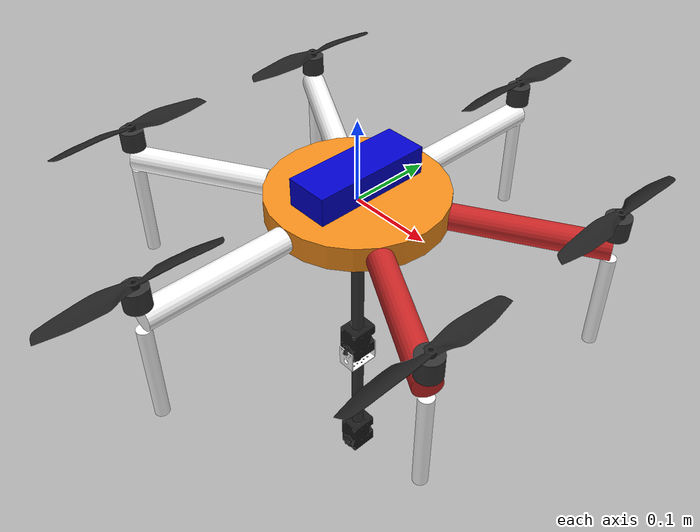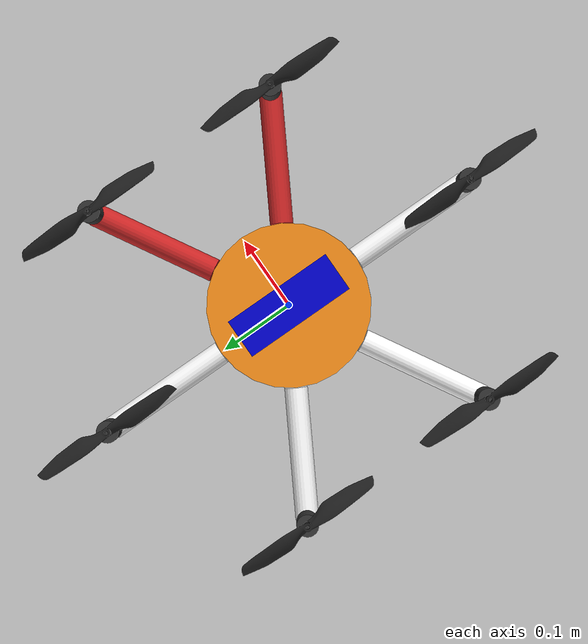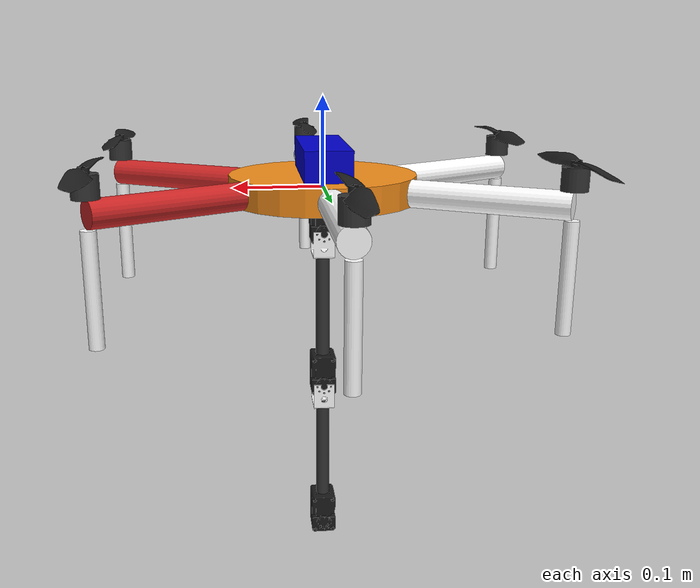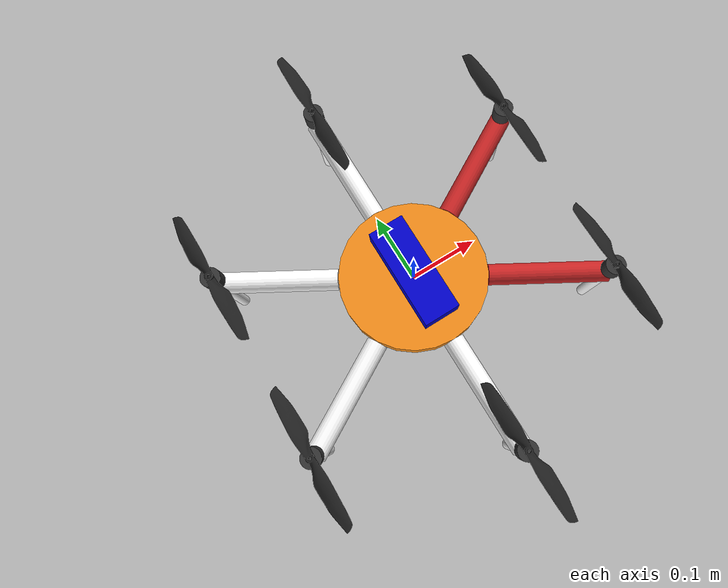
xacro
<?xml version="1.0"?>
<robot name="mantis_uav" xmlns:xacro="http://ros.org/wiki/xacro">
	<!-- Constants -->
	<xacro:property name="pi" value="3.1415926535897931"/>

	<!-- Import macros -->
	<xacro:include filename="$(find mantis_description)/urdf/visual_servo.xacro" />

	<xacro:include filename="$(find mantis_description)/urdf/frame_battery.xacro" />
	<xacro:include filename="$(find mantis_description)/urdf/frame_servo.xacro" />
	<xacro:include filename="$(find mantis_description)/urdf/frame_arm.xacro" />
	<xacro:include filename="$(find mantis_description)/urdf/frame_motor.xacro" />
	<xacro:include filename="$(find mantis_description)/urdf/frame_skid.xacro" />

	<xacro:include filename="$(find mantis_description)/urdf/arm_joint.xacro" />
	<xacro:include filename="$(find mantis_description)/urdf/arm_link.xacro" />

	<xacro:include filename="$(find mantis_description)/urdf/motor_joint.xacro" />

	<!-- Import all Gazebo-customization elements, including Gazebo colors -->
	<xacro:include filename="$(find mantis_description)/urdf/mantis.gazebo" />
	<!-- Import Rviz colors -->
	<xacro:include filename="$(find mantis_description)/urdf/materials.xacro" />

	<!-- Used for fixing robot to Gazebo 'base_link' -->
	<link name="world"/>

	<joint name="fixed" type="floating">
		<parent link="world"/>
		<child link="base_link"/>
	</joint>

	<!-- Base Link -->
	<link name="base_link">
		<inertial>
			<mass value="1.80497" />
			<inertia ixx="0.02961" iyy="0.02933" izz="0.05342" ixy="0.0" ixz="0.00004" iyz="0.0" />

		</inertial>

		<collision name='collision_base_link'>
			<geometry>
				<cylinder radius="0.105" length="0.03"/>
			</geometry>
		</collision>

		<visual name='visual_base_link'>
			<geometry>
				<cylinder radius="0.105" length="0.03"/>
			</geometry>
			<material name="orange"/>
		</visual>

		<xacro:frame_battery suffix="battery_primary" size="0.052 0.146 0.034" color="blue" xyz="0.0 0.0 0.032" rpy="0.0 0.0 0.0" />

		<xacro:frame_servo suffix="servo_shoulder" size="0.0285 0.034 0.0465" color="black" xyz="0.01425 0.019 -0.015" rpy="${-pi/2} 0 ${pi}" />

		<xacro:frame_arm suffix="arm_1" length="0.17" radius="0.015" color="white" xyz="0 -0.19 0" rpy="${pi/2} 0 0" />
		<xacro:frame_arm suffix="arm_2" length="0.17" radius="0.015" color="white" xyz="0 0.19 0" rpy="${pi/2} 0 0" />
		<xacro:frame_arm suffix="arm_3" length="0.17" radius="0.015" color="red" xyz="0.165 0.095 0" rpy="${pi/2} 0 ${2*pi/3}" />
		<xacro:frame_arm suffix="arm_4" length="0.17" radius="0.015" color="white" xyz="-0.165 -0.095 0" rpy="${pi/2} 0 ${2*pi/3}" />
		<xacro:frame_arm suffix="arm_5" length="0.17" radius="0.015" color="red" xyz="0.165 -0.095 0" rpy="${pi/2} 0 ${pi/3}" />
		<xacro:frame_arm suffix="arm_6" length="0.17" radius="0.015" color="white" xyz="-0.165 0.095 0" rpy="${pi/2} 0 ${pi/3}" />

		<xacro:frame_motor suffix="motor_1" length="0.024" radius="0.014" color="grey" xyz="0 -0.275 0.027" rpy="0 0 0" />
		<xacro:frame_motor suffix="motor_2" length="0.024" radius="0.014" color="grey" xyz="0 0.275 0.027" rpy="0 0 0" />
		<xacro:frame_motor suffix="motor_3" length="0.024" radius="0.014" color="grey" xyz="0.2382 0.1375 0.027" rpy="0 0 0" />
		<xacro:frame_motor suffix="motor_4" length="0.024" radius="0.014" color="grey" xyz="-0.2382 -0.1375 0.027" rpy="0 0 0" />
		<xacro:frame_motor suffix="motor_5" length="0.024" radius="0.014" color="grey" xyz="0.2382 -0.1375 0.027" rpy="0 0 0" />
		<xacro:frame_motor suffix="motor_6" length="0.024" radius="0.014" color="grey" xyz="-0.2382 0.1375 0.027" rpy="0 0 0" />

		<xacro:frame_skid suffix="skid_1" length="0.12" radius="0.008" color="white" xyz="0 -0.275 -0.075" rpy="0 0 0" />
		<xacro:frame_skid suffix="skid_2" length="0.12" radius="0.008" color="white" xyz="0 0.275 -0.075" rpy="0 0 0" />
		<xacro:frame_skid suffix="skid_3" length="0.12" radius="0.008" color="white" xyz="0.2382 0.1375 -0.075" rpy="0 0 0" />
		<xacro:frame_skid suffix="skid_4" length="0.12" radius="0.008" color="white" xyz="-0.2382 -0.1375 -0.075" rpy="0 0 0" />
		<xacro:frame_skid suffix="skid_5" length="0.12" radius="0.008" color="white" xyz="0.2382 -0.1375 -0.075" rpy="0 0 0" />
		<xacro:frame_skid suffix="skid_6" length="0.12" radius="0.008" color="white" xyz="-0.2382 0.1375 -0.075" rpy="0 0 0" />
	</link>

	<xacro:arm_joint suffix="shoulder" parent="base_link" child="link_upperarm" xyz="0 0 -0.05025" rpy="${pi/2} ${pi/2} 0" />

	<xacro:arm_link suffix="upperarm" />

	<xacro:arm_joint suffix="elbow" parent="link_upperarm" child="link_forearm" xyz="0.18325 0 0" rpy="0 0 0" />

	<xacro:arm_link suffix="forearm" />

	<xacro:motor_joint motor_number="1" parent="base_link" xyz="0 -0.275 0.0455" direction="cw" />
	<xacro:motor_joint motor_number="2" parent="base_link" xyz="0 0.275 0.0475" direction="ccw" />
	<xacro:motor_joint motor_number="3" parent="base_link" xyz="0.2382 0.1375 0.0455" direction="cw" />
	<xacro:motor_joint motor_number="4" parent="base_link" xyz="-0.2382 -0.1375 0.0455" direction="ccw" />
	<xacro:motor_joint motor_number="5" parent="base_link" xyz="0.2382 -0.1375 0.0455" direction="ccw" />
	<xacro:motor_joint motor_number="6" parent="base_link" xyz="-0.2382 0.1375 0.0455" direction="cw" />

</robot>

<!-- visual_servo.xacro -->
<robot xmlns:xacro="http://ros.org/wiki/xacro">
	<xacro:macro name="visual_servo" params="suffix xyz rpy">
		<visual name="visual_${suffix}_servo">
			<origin xyz="${xyz}" rpy="${rpy}"/>
			<geometry>
				<mesh filename="package://mantis_description/meshes/X-430_IDLE.stl" scale="0.001 0.001 0.001"/>
			</geometry>

			<material name="dark_grey">
				<color rgba="0.1 0.1 0.1 1.0"/>
			</material>
		</visual>
	</xacro:macro>
</robot>

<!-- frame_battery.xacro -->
<robot xmlns:xacro="http://ros.org/wiki/xacro">
	<xacro:macro name="frame_battery" params="suffix size xyz rpy">
		<collision name="collision_${suffix}">
			<origin xyz="${xyz}" rpy="${rpy}"/>
			<geometry>
				<box size="${size}"/>
			</geometry>
		</collision>

		<visual name="visual_${suffix}">
			<origin xyz="${xyz}" rpy="${rpy}"/>
			<geometry>
				<box size="${size}"/>
			</geometry>

			<material name="blue">
				<color rgba="0.0 0.0 0.8 1.0"/>
			</material>
		</visual>
	</xacro:macro>
</robot>

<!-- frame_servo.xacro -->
<robot xmlns:xacro="http://ros.org/wiki/xacro">
	<xacro:include filename="$(find mantis_description)/urdf/visual_servo.xacro" />

	<xacro:macro name="frame_servo" params="suffix size xyz rpy">
		<collision name="collision_${suffix}">
			<origin xyz="${xyz}" rpy="${rpy}"/>
			<geometry>
				<box size="${size}"/>
			</geometry>
		</collision>

		<xacro:visual_servo suffix="${suffix}" xyz="${xyz}" rpy="${rpy}" />
	</xacro:macro>
</robot>

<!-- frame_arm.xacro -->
<robot xmlns:xacro="http://ros.org/wiki/xacro">
	<xacro:macro name="frame_arm" params="suffix length radius color xyz rpy">
		<collision name="collision_${suffix}">
			<origin xyz="${xyz}" rpy="${rpy}"/>
			<geometry>
				<cylinder radius="${radius}" length="${length}" />
			</geometry>
		</collision>

		<visual name="visual_${suffix}">
			<origin xyz="${xyz}" rpy="${rpy}"/>
			<geometry>
				<cylinder radius="${radius}" length="${length}" />
			</geometry>
			<material name="${color}"/>
		</visual>
	</xacro:macro>
</robot>

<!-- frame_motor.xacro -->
<robot xmlns:xacro="http://ros.org/wiki/xacro">
	<xacro:macro name="frame_motor" params="suffix length radius xyz rpy">
		<collision name="collision_${suffix}">
			<origin xyz="${xyz}" rpy="${rpy}"/>
			<geometry>
				<cylinder radius="${radius}" length="${length}" />
			</geometry>
		</collision>

		<visual name="visual_${suffix}">
			<origin xyz="${xyz}" rpy="${rpy}"/>
			<geometry>
				<cylinder radius="${radius}" length="${length}" />
			</geometry>

			<material name="grey">
				<color rgba="0.2 0.2 0.2 1.0"/>
			</material>
		</visual>
	</xacro:macro>
</robot>

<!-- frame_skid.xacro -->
<robot xmlns:xacro="http://ros.org/wiki/xacro">
	<xacro:macro name="frame_skid" params="suffix length radius color xyz rpy">
		<collision name="collision_${suffix}">
			<origin xyz="${xyz}" rpy="${rpy}"/>
			<geometry>
				<cylinder radius="${radius}" length="${length}" />
			</geometry>
		</collision>

		<visual name="visual_${suffix}">
			<origin xyz="${xyz}" rpy="${rpy}"/>
			<geometry>
				<cylinder radius="${radius}" length="${length}" />
			</geometry>
			<material name="${color}"/>
		</visual>
	</xacro:macro>
</robot>

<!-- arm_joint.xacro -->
<robot xmlns:xacro="http://ros.org/wiki/xacro">
	<xacro:macro name="arm_joint" params="suffix parent child xyz rpy">
		<joint name="joint_${suffix}" type="revolute">
			<parent link="${parent}"/>
			<child link="${child}"/>
			<origin xyz="${xyz}" rpy="${rpy}"/>
			<axis xyz="0 0 1"/>
			<limit effort="1000" velocity="100" lower="${-pi/2}" upper="${pi/2}"/>
			<dynamics damping="0.1" friction="0.0"/>
		</joint>

		<transmission name="trans_${suffix}">
			<type>transmission_interface/SimpleTransmission</type>
			<joint name="joint_${suffix}">
				<hardwareInterface>hardware_interface/EffortJointInterface</hardwareInterface>
			</joint>
			<actuator name="motor_${suffix}">
				<mechanicalReduction>1</mechanicalReduction>
			</actuator>
		</transmission>
	</xacro:macro>
</robot>

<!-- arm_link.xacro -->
<robot xmlns:xacro="http://ros.org/wiki/xacro">
	<xacro:include filename="$(find mantis_description)/urdf/visual_servo.xacro" />

	<xacro:macro name="arm_link" params="suffix">
		<link name="link_${suffix}">
			<inertial name='inertial_${suffix}'>>
				<origin xyz="0.15297991 0 0" rpy="0 0 0"/>
				<mass value="0.10022841" />
				<inertia ixx="1.678e-05" iyy="2.5428e-04" izz="2.4944e-04" ixy="0.0" ixz="0.0" iyz="0.0" />
			</inertial>

			<collision name='collision_${suffix}'>
				<origin xyz="0.091625 0 0" rpy="0 0 0"/>
				<geometry>
					<box size="0.18325 0.024 0.041"/>
				</geometry>
			</collision>

			<visual name="visual_${suffix}_bracket">
				<origin xyz="-0.0025 0.012 0.0205" rpy="${pi/2} ${pi/2} 0"/>
				<geometry>
					<mesh filename="package://mantis_description/meshes/FR12-H101.stl" scale="0.001 0.001 0.001"/>
				</geometry>

				<material name="white">
					<color rgba="1.0 1.0 1.0 1.0"/>
				</material>
			</visual>

			<visual name="visual_${suffix}_rod">
				<origin xyz="0.028 -0.008 -0.008" rpy="0 0 0"/>
				<geometry>
					<mesh filename="package://mantis_description/meshes/rod.stl" scale="0.001 0.001 0.001"/>
				</geometry>

				<material name="grey">
					<color rgba="0.2 0.2 0.2 1.0"/>
				</material>
			</visual>

			<xacro:visual_servo suffix="${suffix}" xyz="0.148 0.01425 -0.019" rpy="0 0 ${-pi/2}" />
		</link>
	</xacro:macro>
</robot>

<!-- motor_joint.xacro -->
<robot xmlns:xacro="http://ros.org/wiki/xacro">
	<xacro:macro name="motor_joint" params="motor_number parent xyz direction">
		<link name="link_rotor_${motor_number}">
			<inertial name='inertial_rotor_${motor_number}'>>
				<origin xyz="0 0 0" rpy="0 0 0"/>
				<mass value="0.005" />
				<inertia ixx="9.75e-07" iyy="0.000273104" izz="0.000274004" ixy="0.0" ixz="0.0" iyz="0.0" />
			</inertial>

			<collision name='collision_rotor_${motor_number}'>
				<origin xyz="0 0 -0.0036" rpy="0 0 0"/>
				<geometry>
					<box size="0.01 0.24 0.01"/>
				</geometry>
			</collision>

			<visual name="visual_rotor_${motor_number}">
				<origin xyz="0 0 -0.0036" rpy="0 0 0"/>
				<geometry>
					<xacro:if value="${direction == 'cw'}">
						<mesh filename="package://mantis_description/meshes/prop_8045_CW.stl" scale="0.001 0.001 0.001"/>
					</xacro:if>
					<xacro:if value="${direction == 'ccw'}">
						<mesh filename="package://mantis_description/meshes/prop_8045_CCW.stl" scale="0.001 0.001 0.001"/>
					</xacro:if>
				</geometry>
				<material name="black"/>
			</visual>
		</link>

		<joint name="joint_rotor_${motor_number}" type="continuous">
			<parent link="${parent}"/>
			<child link="link_rotor_${motor_number}"/>
			<origin xyz="${xyz}" rpy="0 0 0"/>
			<axis xyz="0 0 1"/>
		</joint>

		<gazebo>
			<plugin name='mantis_gazebo_motor_model_${motor_number}' filename='libmantis_gazebo_motor_model.so'>
				<robotNamespace></robotNamespace>
				<jointName>joint_rotor_${motor_number}</jointName>
				<linkName>link_rotor_${motor_number}</linkName>
				<turningDirection>${direction}</turningDirection>
				<timeConstantUp>0.0125</timeConstantUp>
				<timeConstantDown>0.025</timeConstantDown>
				<maxRotVelocity>1618</maxRotVelocity>
				<motorConstant>4.019e-06</motorConstant>
				<momentConstant>0.06</momentConstant>
				<commandSubTopic>/command/motor_velocity</commandSubTopic>
				<motorNumber>${motor_number - 1}</motorNumber>
				<rotorDragCoefficient>0.000806428</rotorDragCoefficient>
				<rollingMomentCoefficient>1e-06</rollingMomentCoefficient>
				<motorSpeedPubTopic>/state/motor_speed/${motor_number}</motorSpeedPubTopic>
				<rotorVelocitySlowdownSim>10</rotorVelocitySlowdownSim>
			</plugin>
		</gazebo>
	</xacro:macro>
</robot>
